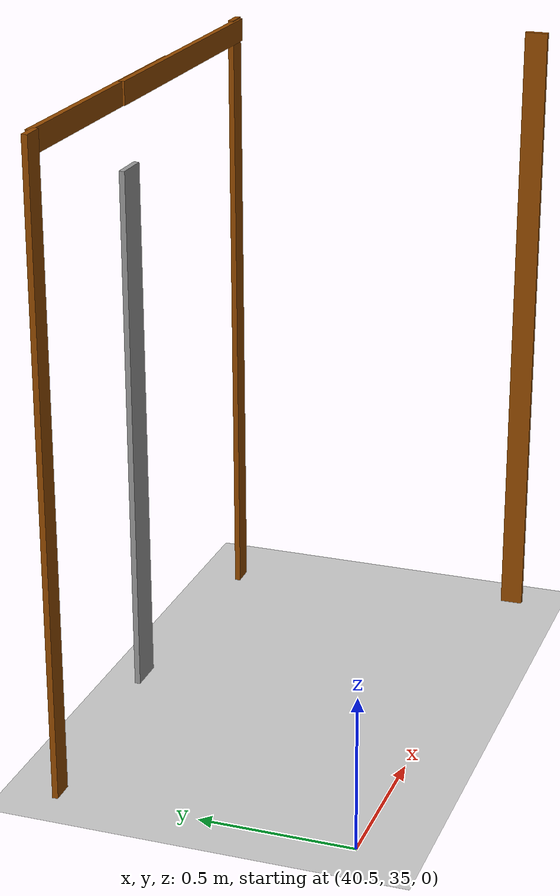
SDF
<sdf version="1.6">
 <world name="default">
  <model name="ground_plane">
   <static>1</static>
   <link name="link">
    <collision name="collision">
     <geometry><plane><normal>0 0 1</normal><size>100 100</size></plane></geometry>
     <surface><friction><ode><mu>100</mu><mu2>50</mu2></ode></friction></surface>
    </collision>
    <visual name="visual">
     <cast_shadows>0</cast_shadows>
     <geometry><plane><normal>0 0 1</normal><size>100 100</size></plane></geometry>
     <material>
      <script><uri>file://media/materials/scripts/gazebo.material</uri><name>Gazebo/Grey</name></script>
     </material>
    </visual>
   </link>
  </model>
  <model name="metal_hinge_clone_1_clone">
   <link name="link">
    <inertial>
     <mass>1</mass>
     <inertia>
      <ixx>0.166667</ixx>
      <ixy>0</ixy>
      <ixz>0</ixz>
      <iyy>0.166667</iyy>
      <iyz>0</iyz>
      <izz>0.166667</izz>
     </inertia>
    </inertial>
    <visual name="visual">
     <geometry><box><size>0.018685 0.118108 1.77296</size></box></geometry>
     <material>
      <script><name>Gazebo/Grey</name><uri>file://media/materials/scripts/gazebo.material</uri></script>
      <shader type="pixel"/>
     </material>
    </visual>
    <collision name="collision">
     <geometry><box><size>0.018685 0.118108 1.77296</size></box></geometry>
     <surface>
      <friction>
       <ode><mu>1</mu><mu2>1</mu2><fdir1>0 0 0</fdir1><slip1>0</slip1><slip2>0</slip2></ode>
       <torsional>
        <coefficient>1</coefficient>
        <patch_radius>0</patch_radius>
        <surface_radius>0</surface_radius>
        <use_patch_radius>1</use_patch_radius>
        <ode><slip>0</slip></ode>
       </torsional>
      </friction>
      <bounce><restitution_coefficient>0</restitution_coefficient><threshold>1e+06</threshold></bounce>
      <contact>
       <collide_without_contact>0</collide_without_contact>
       <collide_without_contact_bitmask>1</collide_without_contact_bitmask>
       <collide_bitmask>1</collide_bitmask>
       <ode>
        <soft_cfm>0</soft_cfm>
        <soft_erp>0.2</soft_erp>
        <kp>1e+13</kp>
        <kd>1</kd>
        <max_vel>0.01</max_vel>
        <min_depth>0</min_depth>
       </ode>
       <bullet>
        <split_impulse>1</split_impulse>
        <split_impulse_penetration_threshold>-0.01</split_impulse_penetration_threshold>
        <soft_cfm>0</soft_cfm>
        <soft_erp>0.2</soft_erp>
        <kp>1e+13</kp>
        <kd>1</kd>
       </bullet>
      </contact>
     </surface>
    </collision>
   </link>
   <static>1</static>
   <pose>41.2673 35.9996 0.901519 0 0 -1.56475</pose>
  </model>
  <model name="oak_frame_clone_3_clone_clone_0">
   <link name="link">
    <inertial>
     <mass>1</mass>
     <inertia>
      <ixx>0.166667</ixx>
      <ixy>0</ixy>
      <ixz>0</ixz>
      <iyy>0.166667</iyy>
      <iyz>0</iyz>
      <izz>0.166667</izz>
     </inertia>
    </inertial>
    <visual name="visual">
     <geometry><box><size>0.018685 0.07556 2.09672</size></box></geometry>
     <material>
      <script><name>Gazebo/Grey</name><uri>file://media/materials/scripts/gazebo.material</uri></script>
      <shader type="pixel"><normal_map>__default__</normal_map></shader>
      <diffuse>0.58 0.29 0 0</diffuse>
      <ambient>0.58 0.29 0 1</ambient>
      <specular>0.01 0.01 0.01 1</specular>
      <emissive>0 0 0 1</emissive>
     </material>
    </visual>
    <collision name="collision">
     <geometry><box><size>0.018685 0.07556 2.09672</size></box></geometry>
     <surface>
      <friction>
       <ode><mu>1</mu><mu2>1</mu2><fdir1>0 0 0</fdir1><slip1>0</slip1><slip2>0</slip2></ode>
       <torsional>
        <coefficient>1</coefficient>
        <patch_radius>0</patch_radius>
        <surface_radius>0</surface_radius>
        <use_patch_radius>1</use_patch_radius>
        <ode><slip>0</slip></ode>
       </torsional>
      </friction>
      <bounce><restitution_coefficient>0</restitution_coefficient><threshold>1e+06</threshold></bounce>
      <contact>
       <collide_without_contact>0</collide_without_contact>
       <collide_without_contact_bitmask>1</collide_without_contact_bitmask>
       <collide_bitmask>1</collide_bitmask>
       <ode>
        <soft_cfm>0</soft_cfm>
        <soft_erp>0.2</soft_erp>
        <kp>1e+13</kp>
        <kd>1</kd>
        <max_vel>0.01</max_vel>
        <min_depth>0</min_depth>
       </ode>
       <bullet>
        <split_impulse>1</split_impulse>
        <split_impulse_penetration_threshold>-0.01</split_impulse_penetration_threshold>
        <soft_cfm>0</soft_cfm>
        <soft_erp>0.2</soft_erp>
        <kp>1e+13</kp>
        <kd>1</kd>
       </bullet>
      </contact>
     </surface>
    </collision>
   </link>
   <static>1</static>
   <pose>42.1386 35.9776 1.03498 0 0 -1.54792</pose>
  </model>
  <model name="oak_frame_clone_3_clone_clone_1">
   <link name="link">
    <inertial>
     <mass>1</mass>
     <inertia>
      <ixx>0.166667</ixx>
      <ixy>0</ixy>
      <ixz>0</ixz>
      <iyy>0.166667</iyy>
      <iyz>0</iyz>
      <izz>0.166667</izz>
     </inertia>
    </inertial>
    <visual name="visual">
     <geometry><box><size>0.018685 0.07556 2.09672</size></box></geometry>
     <material>
      <script><name>Gazebo/Grey</name><uri>file://media/materials/scripts/gazebo.material</uri></script>
      <shader type="pixel"><normal_map>__default__</normal_map></shader>
      <diffuse>0.58 0.29 0 0</diffuse>
      <ambient>0.58 0.29 0 1</ambient>
      <specular>0.01 0.01 0.01 1</specular>
      <emissive>0 0 0 1</emissive>
     </material>
    </visual>
    <collision name="collision">
     <geometry><box><size>0.018685 0.07556 2.09672</size></box></geometry>
     <surface>
      <friction>
       <ode><mu>1</mu><mu2>1</mu2><fdir1>0 0 0</fdir1><slip1>0</slip1><slip2>0</slip2></ode>
       <torsional>
        <coefficient>1</coefficient>
        <patch_radius>0</patch_radius>
        <surface_radius>0</surface_radius>
        <use_patch_radius>1</use_patch_radius>
        <ode><slip>0</slip></ode>
       </torsional>
      </friction>
      <bounce><restitution_coefficient>0</restitution_coefficient><threshold>1e+06</threshold></bounce>
      <contact>
       <collide_without_contact>0</collide_without_contact>
       <collide_without_contact_bitmask>1</collide_without_contact_bitmask>
       <collide_bitmask>1</collide_bitmask>
       <ode>
        <soft_cfm>0</soft_cfm>
        <soft_erp>0.2</soft_erp>
        <kp>1e+13</kp>
        <kd>1</kd>
        <max_vel>0.01</max_vel>
        <min_depth>0</min_depth>
       </ode>
       <bullet>
        <split_impulse>1</split_impulse>
        <split_impulse_penetration_threshold>-0.01</split_impulse_penetration_threshold>
        <soft_cfm>0</soft_cfm>
        <soft_erp>0.2</soft_erp>
        <kp>1e+13</kp>
        <kd>1</kd>
       </bullet>
      </contact>
     </surface>
    </collision>
   </link>
   <static>1</static>
   <pose>40.5132 35.9627 1.03498 0 0 -1.54792</pose>
  </model>
  <model name="oak_frame_clone_3_clone_1_clone_1_clone_0">
   <link name="link">
    <inertial>
     <mass>1</mass>
     <inertia>
      <ixx>0.166667</ixx>
      <ixy>0</ixy>
      <ixz>0</ixz>
      <iyy>0.166667</iyy>
      <iyz>0</iyz>
      <izz>0.166667</izz>
     </inertia>
    </inertial>
    <visual name="visual">
     <geometry><box><size>0.018685 0.07556 2.09672</size></box></geometry>
     <material>
      <script><name>Gazebo/Grey</name><uri>file://media/materials/scripts/gazebo.material</uri></script>
      <shader type="pixel"><normal_map>__default__</normal_map></shader>
      <diffuse>0.58 0.29 0 0</diffuse>
      <ambient>0.58 0.29 0 1</ambient>
      <specular>0.01 0.01 0.01 1</specular>
      <emissive>0 0 0 1</emissive>
     </material>
    </visual>
    <collision name="collision">
     <geometry><box><size>0.018685 0.07556 2.09672</size></box></geometry>
     <surface>
      <friction>
       <ode><mu>1</mu><mu2>1</mu2><fdir1>0 0 0</fdir1><slip1>0</slip1><slip2>0</slip2></ode>
       <torsional>
        <coefficient>1</coefficient>
        <patch_radius>0</patch_radius>
        <surface_radius>0</surface_radius>
        <use_patch_radius>1</use_patch_radius>
        <ode><slip>0</slip></ode>
       </torsional>
      </friction>
      <bounce><restitution_coefficient>0</restitution_coefficient><threshold>1e+06</threshold></bounce>
      <contact>
       <collide_without_contact>0</collide_without_contact>
       <collide_without_contact_bitmask>1</collide_without_contact_bitmask>
       <collide_bitmask>1</collide_bitmask>
       <ode>
        <soft_cfm>0</soft_cfm>
        <soft_erp>0.2</soft_erp>
        <kp>1e+13</kp>
        <kd>1</kd>
        <max_vel>0.01</max_vel>
        <min_depth>0</min_depth>
       </ode>
       <bullet>
        <split_impulse>1</split_impulse>
        <split_impulse_penetration_threshold>-0.01</split_impulse_penetration_threshold>
        <soft_cfm>0</soft_cfm>
        <soft_erp>0.2</soft_erp>
        <kp>1e+13</kp>
        <kd>1</kd>
       </bullet>
      </contact>
     </surface>
    </collision>
   </link>
   <static>1</static>
   <pose>42.2583 34.9639 1.03352 -0.008142 0.000764 -3.13056</pose>
  </model>
  <model name="oak_frame_clone_3_clone_0_clone_1_clone">
   <link name="link">
    <inertial>
     <mass>1</mass>
     <inertia>
      <ixx>0.166667</ixx>
      <ixy>0</ixy>
      <ixz>0</ixz>
      <iyy>0.166667</iyy>
      <iyz>0</iyz>
      <izz>0.166667</izz>
     </inertia>
    </inertial>
    <visual name="visual">
     <geometry><box><size>0.018685 0.07556 1.01014</size></box></geometry>
     <material>
      <script><name>Gazebo/Grey</name><uri>file://media/materials/scripts/gazebo.material</uri></script>
      <shader type="pixel"><normal_map>__default__</normal_map></shader>
      <diffuse>0.58 0.29 0 0</diffuse>
      <ambient>0.58 0.29 0 1</ambient>
      <specular>0.01 0.01 0.01 1</specular>
      <emissive>0 0 0 1</emissive>
     </material>
    </visual>
    <collision name="collision">
     <geometry><box><size>0.018685 0.07556 1.01014</size></box></geometry>
     <surface>
      <friction>
       <ode><mu>1</mu><mu2>1</mu2><fdir1>0 0 0</fdir1><slip1>0</slip1><slip2>0</slip2></ode>
       <torsional>
        <coefficient>1</coefficient>
        <patch_radius>0</patch_radius>
        <surface_radius>0</surface_radius>
        <use_patch_radius>1</use_patch_radius>
        <ode><slip>0</slip></ode>
       </torsional>
      </friction>
      <bounce><restitution_coefficient>0</restitution_coefficient><threshold>1e+06</threshold></bounce>
      <contact>
       <collide_without_contact>0</collide_without_contact>
       <collide_without_contact_bitmask>1</collide_without_contact_bitmask>
       <collide_bitmask>1</collide_bitmask>
       <ode>
        <soft_cfm>0</soft_cfm>
        <soft_erp>0.2</soft_erp>
        <kp>1e+13</kp>
        <kd>1</kd>
        <max_vel>0.01</max_vel>
        <min_depth>0</min_depth>
       </ode>
       <bullet>
        <split_impulse>1</split_impulse>
        <split_impulse_penetration_threshold>-0.01</split_impulse_penetration_threshold>
        <soft_cfm>0</soft_cfm>
        <soft_erp>0.2</soft_erp>
        <kp>1e+13</kp>
        <kd>1</kd>
       </bullet>
      </contact>
     </surface>
    </collision>
   </link>
   <static>1</static>
   <pose>41.034 35.9763 2.04296 1.56806 -0.000643 -1.57018</pose>
  </model>
  <model name="oak_frame_clone_3_clone_0_clone_1_clone_0">
   <link name="link">
    <inertial>
     <mass>1</mass>
     <inertia>
      <ixx>0.166667</ixx>
      <ixy>0</ixy>
      <ixz>0</ixz>
      <iyy>0.166667</iyy>
      <iyz>0</iyz>
      <izz>0.166667</izz>
     </inertia>
    </inertial>
    <visual name="visual">
     <geometry><box><size>0.018685 0.07556 1.01014</size></box></geometry>
     <material>
      <script><name>Gazebo/Grey</name><uri>file://media/materials/scripts/gazebo.material</uri></script>
      <shader type="pixel"><normal_map>__default__</normal_map></shader>
      <diffuse>0.58 0.29 0 0</diffuse>
      <ambient>0.58 0.29 0 1</ambient>
      <specular>0.01 0.01 0.01 1</specular>
      <emissive>0 0 0 1</emissive>
     </material>
    </visual>
    <collision name="collision">
     <geometry><box><size>0.018685 0.07556 1.01014</size></box></geometry>
     <surface>
      <friction>
       <ode><mu>1</mu><mu2>1</mu2><fdir1>0 0 0</fdir1><slip1>0</slip1><slip2>0</slip2></ode>
       <torsional>
        <coefficient>1</coefficient>
        <patch_radius>0</patch_radius>
        <surface_radius>0</surface_radius>
        <use_patch_radius>1</use_patch_radius>
        <ode><slip>0</slip></ode>
       </torsional>
      </friction>
      <bounce><restitution_coefficient>0</restitution_coefficient><threshold>1e+06</threshold></bounce>
      <contact>
       <collide_without_contact>0</collide_without_contact>
       <collide_without_contact_bitmask>1</collide_without_contact_bitmask>
       <collide_bitmask>1</collide_bitmask>
       <ode>
        <soft_cfm>0</soft_cfm>
        <soft_erp>0.2</soft_erp>
        <kp>1e+13</kp>
        <kd>1</kd>
        <max_vel>0.01</max_vel>
        <min_depth>0</min_depth>
       </ode>
       <bullet>
        <split_impulse>1</split_impulse>
        <split_impulse_penetration_threshold>-0.01</split_impulse_penetration_threshold>
        <soft_cfm>0</soft_cfm>
        <soft_erp>0.2</soft_erp>
        <kp>1e+13</kp>
        <kd>1</kd>
       </bullet>
      </contact>
     </surface>
    </collision>
   </link>
   <static>1</static>
   <pose>41.6638 35.9696 2.04296 1.56806 -0.000643 -1.57018</pose>
  </model>
 </world>
</sdf>
